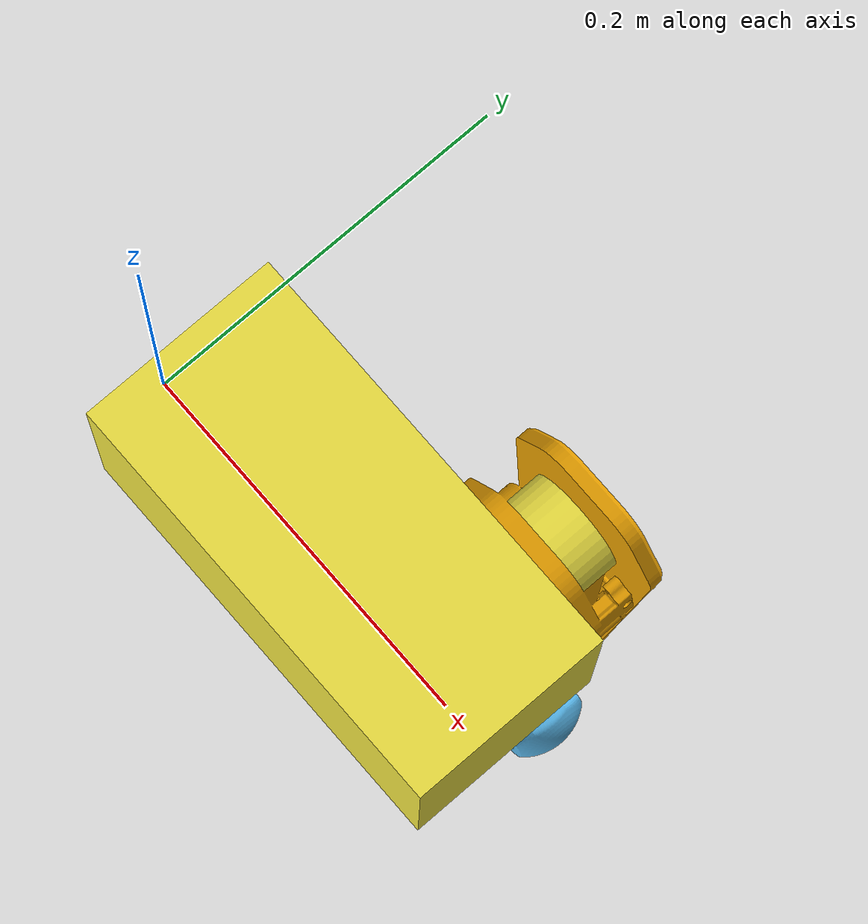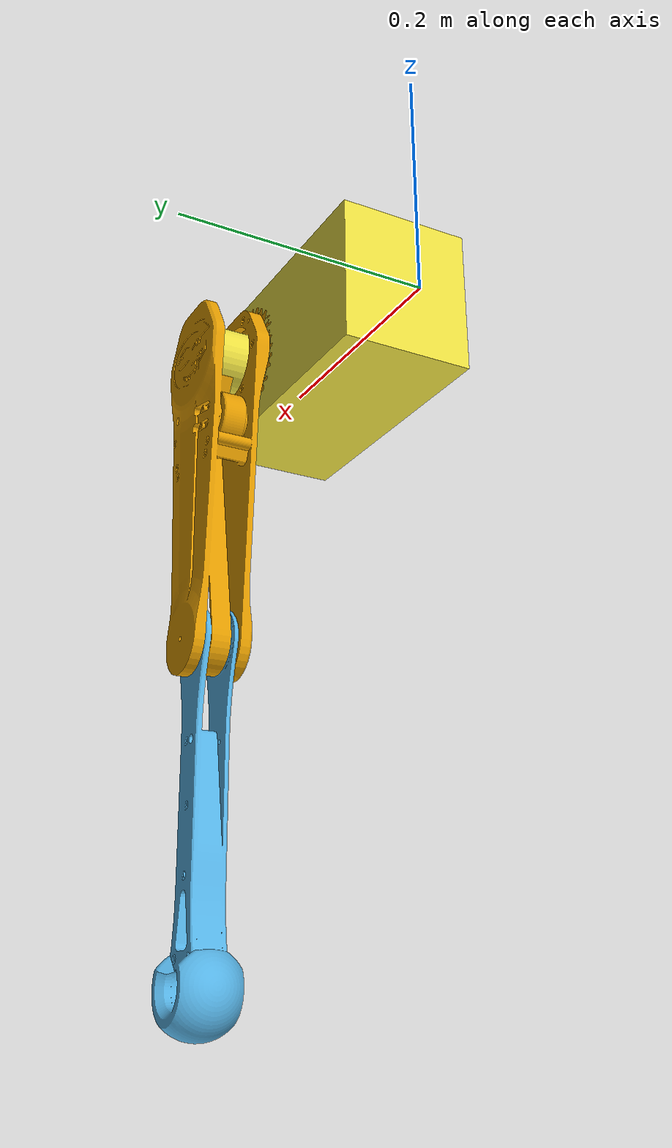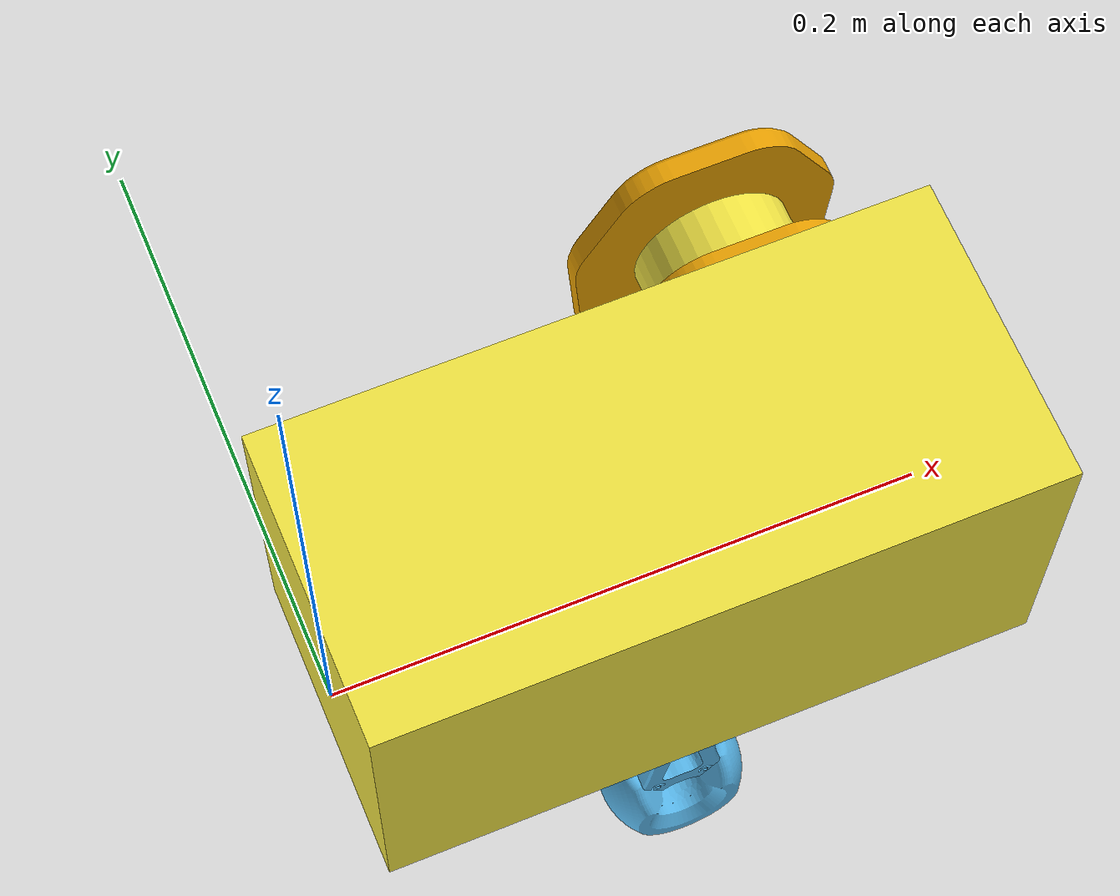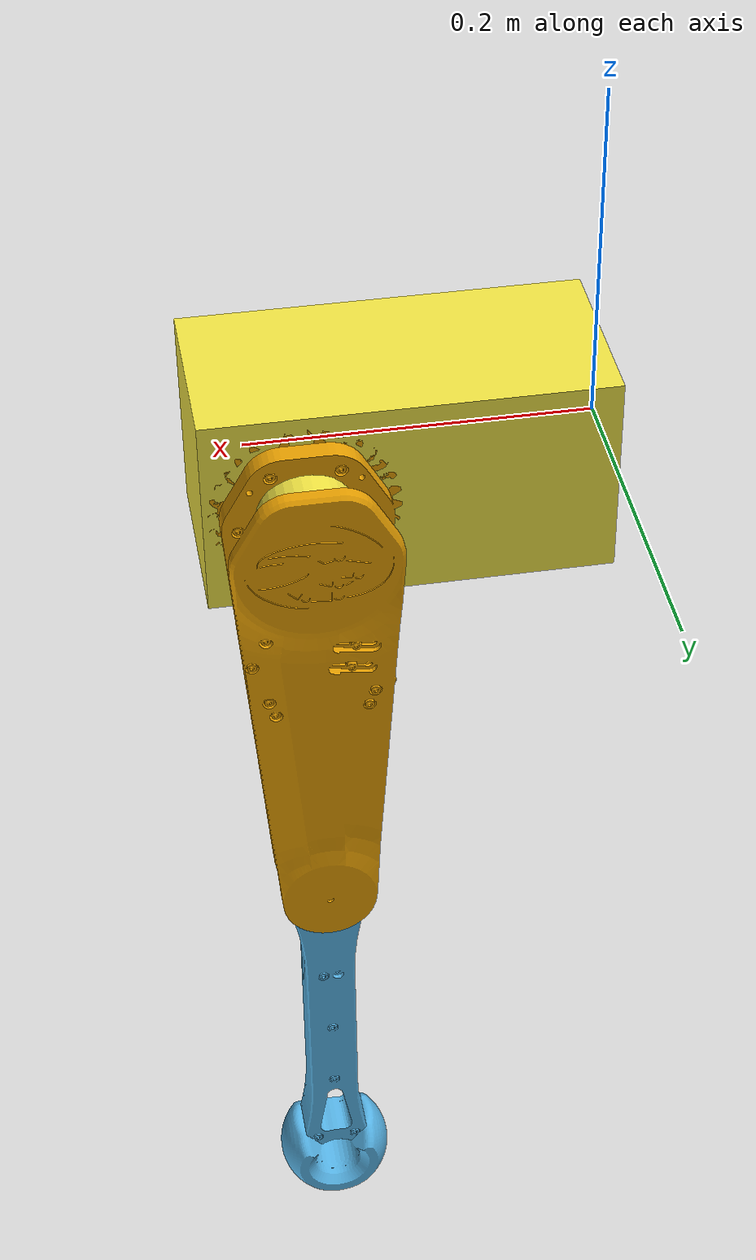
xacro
<?xml version="1.0"?>
<robot name="meldog_simple_core" xmlns:xacro="http://www.ros.org/wiki/xacro">

    <xacro:include filename="base_properties.urdf.xacro" />
    <xacro:include filename="macros/macros.urdf.xacro" />

    <xacro:link_macro
        name="upper_limb_link"
        vis_name="${upper_limb_vis_stl_name}"
        coll_name="${upper_limb_coll_stl_name}"

        m="${upper_limb_mass}"
        cm_x="${upper_limb_cm_x}"
        cm_y="${upper_limb_cm_y}"
        cm_z="${upper_limb_cm_z}"

        ixx="${upper_limb_ixx}" ixy="${upper_limb_ixy}" ixz="${upper_limb_ixz}"
                                iyy="${upper_limb_iyy}" iyz="${upper_limb_iyz}"
                                                        izz="${upper_limb_izz}"/>

    <xacro:link_macro
        name="lower_limb_link"
        vis_name="${lower_limb_vis_stl_name}"
        coll_name="${lower_limb_coll_stl_name}"

        m="${lower_limb_mass}"
        cm_x="${lower_limb_cm_x}"
        cm_y="${lower_limb_cm_y}"
        cm_z="${lower_limb_cm_z}"

        ixx="${lower_limb_ixx}" ixy="${lower_limb_ixy}" ixz="${lower_limb_ixz}"
                                iyy="${lower_limb_iyy}" iyz="${lower_limb_iyz}"
                                                        izz="${lower_limb_izz}"/>

    <link name="foot_link" />

    <xacro:link_macro
        name="hip_link"
        vis_name="${hip_vis_stl_name}"
        coll_name="${hip_coll_stl_name}"

        m="${hip_mass}"
        cm_x="${hip_cm_x}"
        cm_y="${hip_cm_y}"
        cm_z="${hip_cm_z}"

        ixx="${hip_ixx}" ixy="${hip_ixy}" ixz="${hip_ixz}"
                         iyy="${hip_iyy}" iyz="${hip_iyz}"
                                          izz="${hip_izz}"/>

    <joint name="hip_upper_limb_joint" type="revolute">
        <parent link="hip_link" />
        <child link="upper_limb_link" />
        <origin xyz="${hip_upper_limb_x}
                     ${hip_upper_limb_y}
                     ${hip_upper_limb_z}"
                rpy="0 0 0" />
        <limit lower="${hip_upper_limb_lower_limit/180.0*pi}"
               upper="${hip_upper_limb_upper_limit/180.0*pi}"
               effort="${hip_upper_limb_effort}"
               velocity="${hip_upper_limb_velocity}" />
        <axis xyz="0 1 0" />
    </joint>

    <joint name="upper_limb_lower_limb_joint" type="revolute">
        <parent link="upper_limb_link" />
        <child link="lower_limb_link" />
        <origin xyz="0 0 ${-upper_limb_length}" rpy="0 0 0" />
        <limit lower="${upper_limb_lower_limb_lower_limit/180.0*pi}"
               upper="${upper_limb_lower_limb_upper_limit/180.0*pi}"
               effort="${upper_limb_lower_limb_effort}"
               velocity="${upper_limb_lower_limb_velocity}" />
        <axis xyz="0 1 0" />
    </joint>

    <joint name="lower_limb_foot_joint" type="fixed">
        <parent link="lower_limb_link" />
        <child link="foot_link" />
        <origin xyz="0 0 ${-lower_limb_length_to_foot}" rpy="0 0 0" />
    </joint>

</robot>

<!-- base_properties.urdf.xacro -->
<robot xmlns:xacro="http://www.ros.org/wiki/xacro">

    <!-- stl mesh names for each link in leg -->

        <!-- visual tag meshes -->
        <xacro:property name="hip_vis_stl_name" value="hip_test.stl" />
        <xacro:property name="upper_limb_vis_stl_name" value="upper_limb_test.stl" />
        <xacro:property name="lower_limb_vis_stl_name" value="lower_limb_test.stl" />

        <!-- collision tag meshes -->
        <xacro:property name="hip_coll_stl_name" value="hip_collision.stl" />
        <xacro:property name="upper_limb_coll_stl_name" value="upper_limb_collision.stl" />
        <xacro:property name="lower_limb_coll_stl_name" value="lower_limb_collision.stl" />

    <!-- limb dimensions -->
    <xacro:property name="upper_limb_length" value="0.25" />
    <xacro:property name="lower_limb_length_to_foot" value="0.25" />

    <!-- inertial properties for each link -->

        <!-- leg body link -->

            <!-- mass -->
            <xacro:property name="hip_mass" value="3.607"/>

            <!-- center of mass -->
            <xacro:property name="hip_cm_x" value="125.497"/>
            <xacro:property name="hip_cm_y" value="20.770"/>
            <xacro:property name="hip_cm_z" value="0.248"/>

            <!-- moments of inertia -->
            <xacro:property name="hip_ixx" value="4660.408"/>
            <xacro:property name="hip_ixy" value="-338.226"/>
            <xacro:property name="hip_ixz" value="0.847"/>

            <xacro:property name="hip_iyy" value="14607.423"/>
            <xacro:property name="hip_iyz" value="49.927"/>

            <xacro:property name="hip_izz" value="13707.172"/>

        <!-- upper limb link -->

            <!-- mass -->
            <xacro:property name="upper_limb_mass" value="0.474"/>

            <!-- center of mass -->
            <xacro:property name="upper_limb_cm_x" value="-1.185"/>
            <xacro:property name="upper_limb_cm_y" value="-4.308"/>
            <xacro:property name="upper_limb_cm_z" value="-94.203"/>

            <!-- moments of inertia -->
            <xacro:property name="upper_limb_ixx" value="4064.505"/>
            <xacro:property name="upper_limb_ixy" value="1.241"/>
            <xacro:property name="upper_limb_ixz" value="19.989"/>

            <xacro:property name="upper_limb_iyy" value="4150.05"/>
            <xacro:property name="upper_limb_iyz" value="235.648"/>

            <xacro:property name="upper_limb_izz" value="424.555"/>

        <!-- lower limb link -->

            <!-- mass -->
            <xacro:property name="lower_limb_mass" value="0.116"/>

            <!-- center of mass -->
            <xacro:property name="lower_limb_cm_x" value="0.546"/>
            <xacro:property name="lower_limb_cm_y" value="0"/>
            <xacro:property name="lower_limb_cm_z" value="-177.643"/>

            <!-- moments of inertia -->
            <xacro:property name="lower_limb_ixx" value="967.349"/>
            <xacro:property name="lower_limb_ixy" value="0"/>
            <xacro:property name="lower_limb_ixz" value="-4.842"/>

            <xacro:property name="lower_limb_iyy" value="982.604"/>
            <xacro:property name="lower_limb_iyz" value="-0.001"/>

            <xacro:property name="lower_limb_izz" value="37.177"/>

    <!-- joint properties -->

        <!-- body to limb Joint positions -->

            <!-- leg body upper limb joint -->
            <xacro:property name="hip_upper_limb_x" value="0.174"/>
            <xacro:property name="hip_upper_limb_y" value="0.0925"/>
            <xacro:property name="hip_upper_limb_z" value="0"/>

        <!-- joint movement limits in degrees -->

            <!-- leg body upper limb joint -->
            <xacro:property name="hip_upper_limb_lower_limit" value="-120" />
            <xacro:property name="hip_upper_limb_upper_limit" value="120" />

            <!-- upper limb lower limb joint -->
            <xacro:property name="upper_limb_lower_limb_lower_limit" value="-160" />
            <xacro:property name="upper_limb_lower_limb_upper_limit" value="160" />

        <!-- joint effort limits -->
        <xacro:property name="hip_upper_limb_effort" value="100.0" />
        <xacro:property name="upper_limb_lower_limb_effort" value="100.0" />

        <!-- joint velocity limits -->
        <xacro:property name="hip_upper_limb_velocity" value="100.0" />
        <xacro:property name="upper_limb_lower_limb_velocity" value="100.0" />

</robot>

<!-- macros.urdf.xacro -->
<robot xmlns:xacro="http://www.ros.org/wiki/xacro">

    <!-- Macro for defining a link, please ensure that
    the visual and collision models coordinate
    systems are placed in joints -->

    <xacro:macro name="link_macro" params="name vis_name coll_name m cm_x cm_y cm_z ixx ixy ixz iyy iyz izz">

        <link name="${name}">
            <visual>
                <geometry>
                    <mesh filename="package://meldog_description/meshes/visual/${vis_name}"
                          scale="0.001 0.001 0.001" />
                </geometry>
                <origin xyz="0 0 0" rpy="0 0 0"/>
            </visual>

            <collision>
                <geometry>
                    <mesh filename="package://meldog_description/meshes/collision/${coll_name}"
                          scale="0.001 0.001 0.001" />
                </geometry>
                <origin xyz="0 0 0" rpy="0 0 0" />
            </collision>

            <inertial>
                <mass value="${m}" />
                <origin xyz="${cm_x*0.001} ${cm_y*0.001} ${cm_z*0.001}" rpy="0 0 0" />
                <inertia ixx="${ixx*0.000001}" ixy="${ixy*0.000001}" ixz="${ixz*0.000001}"
                                               iyy="${iyy*0.000001}" iyz="${iyz*0.000001}"
                                                                     izz="${izz*0.000001}" />
            </inertial>

        </link>

    </xacro:macro>

</robot>
